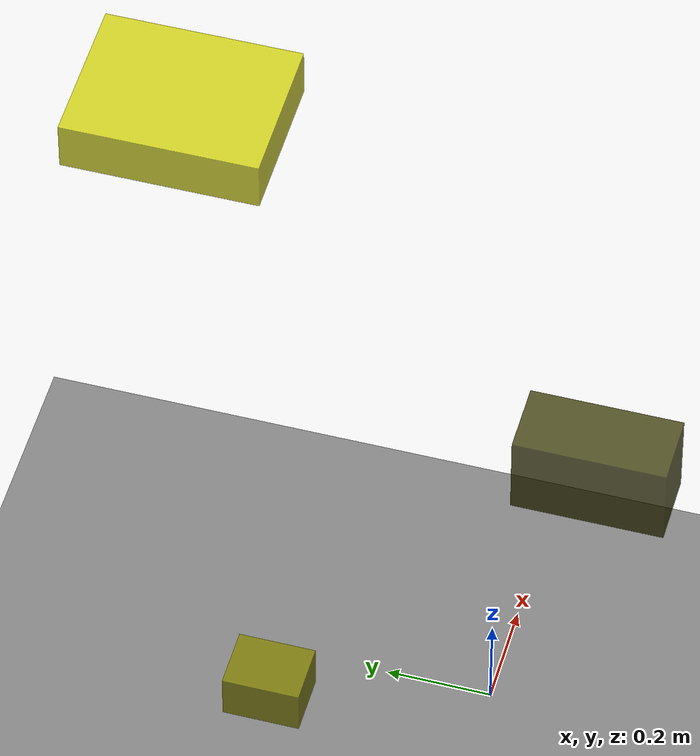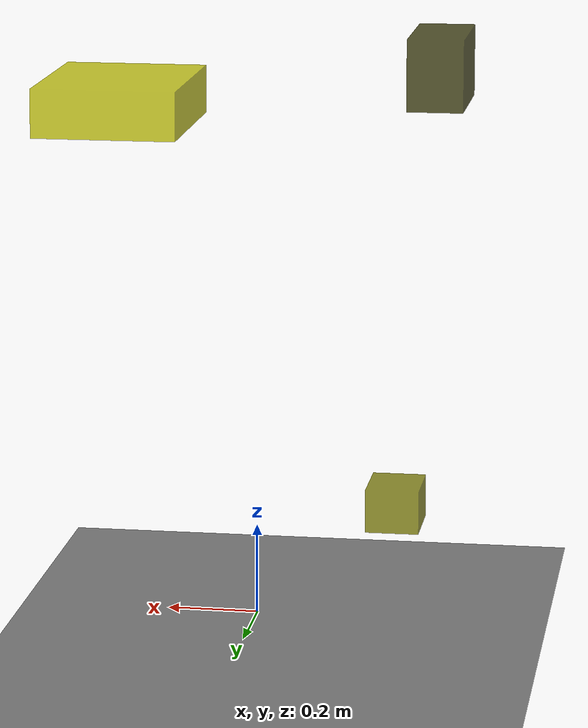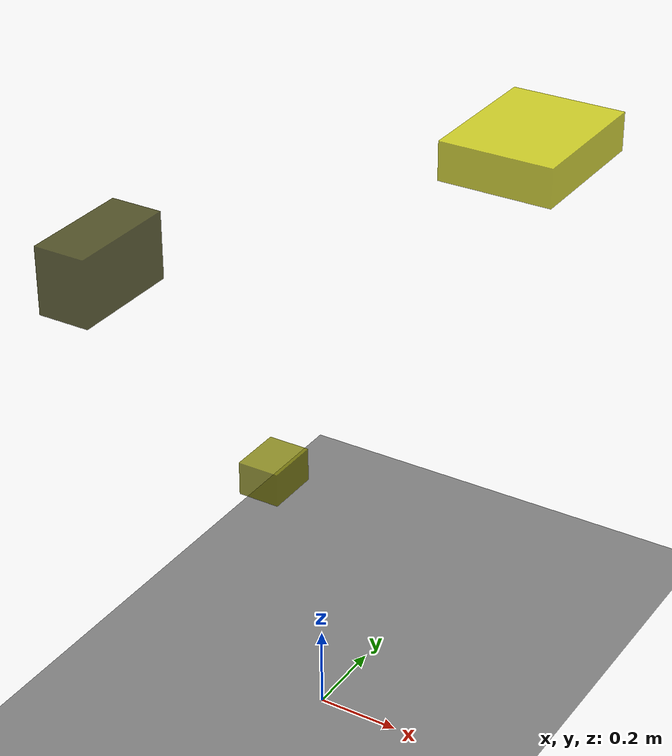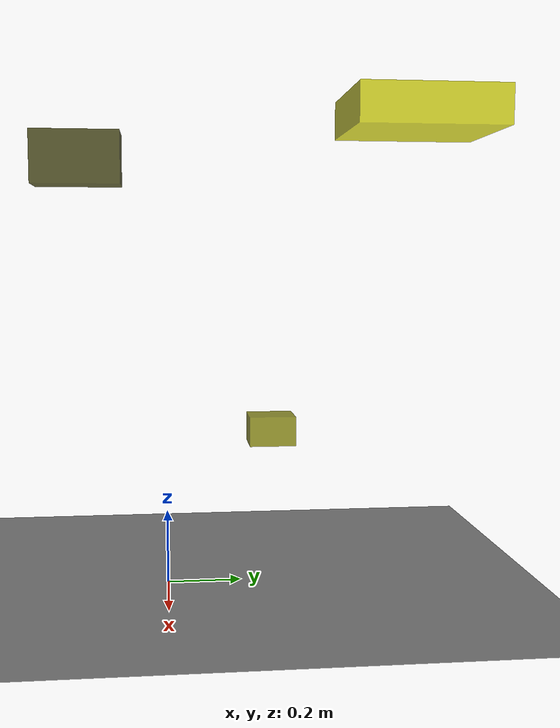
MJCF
<?xml version="1.0"?>
<mujoco model="obstacle_scene">
  <compiler angle="radian" coordinate="local"/>
  <option timestep="0.001" gravity="0 0 -9.81"/>

  <asset>
    <material name="obstacle_mat" rgba="0.8 0.8 0.0 0.8"/>
    <material name="ground_mat" rgba="0.5 0.5 0.5 1"/>
  </asset>

  <worldbody>
    <!-- Ground plane -->
    <geom name="ground" type="plane" size="3 3 0.1" material="ground_mat"/>

    <!-- Obstacles -->
    <body name="obstacle_0" pos="-0.372200 -0.266190 1.192492">
      <geom name="obs_0" type="box" size="0.062339 0.133745 0.079747" rgba="0.2 0.2 0.0 0.8"/>
    </body>
    <body name="obstacle_1" pos="-0.344758 0.328612 0.355700">
      <geom name="obs_1" type="box" size="0.055873 0.071435 0.045641" rgba="0.5 0.5 0.0 0.8"/>
    </body>
    <body name="obstacle_2" pos="0.178276 0.629210 1.245505">
      <geom name="obs_2" type="box" size="0.142728 0.182863 0.048473" rgba="0.8 0.8 0.0 0.8"/>
    </body>
  </worldbody>
</mujoco>
